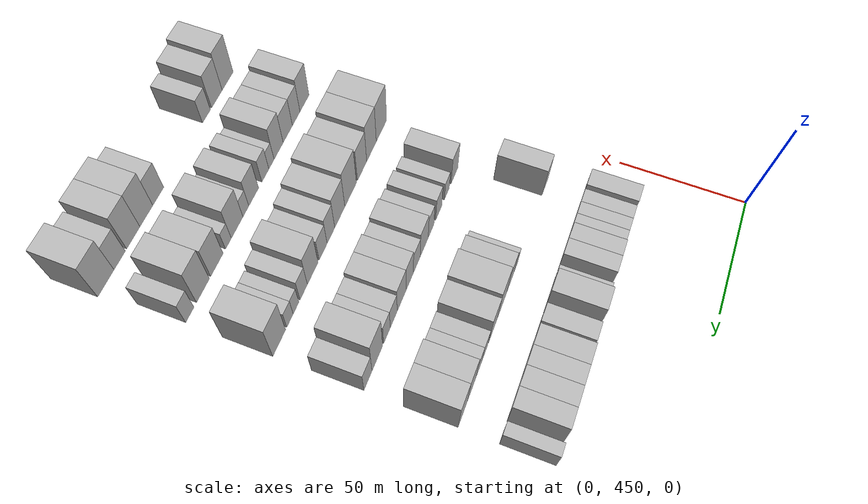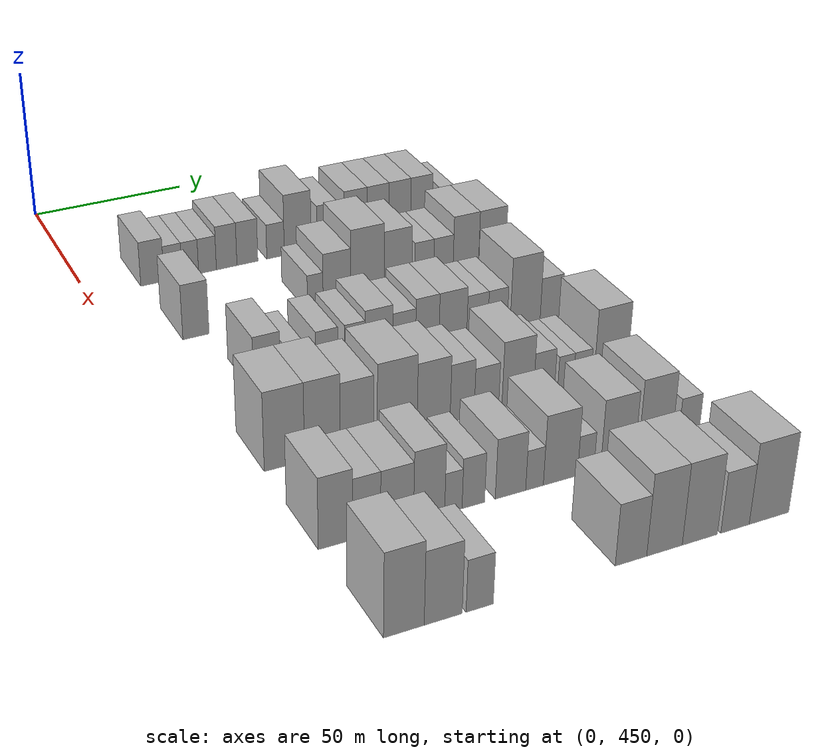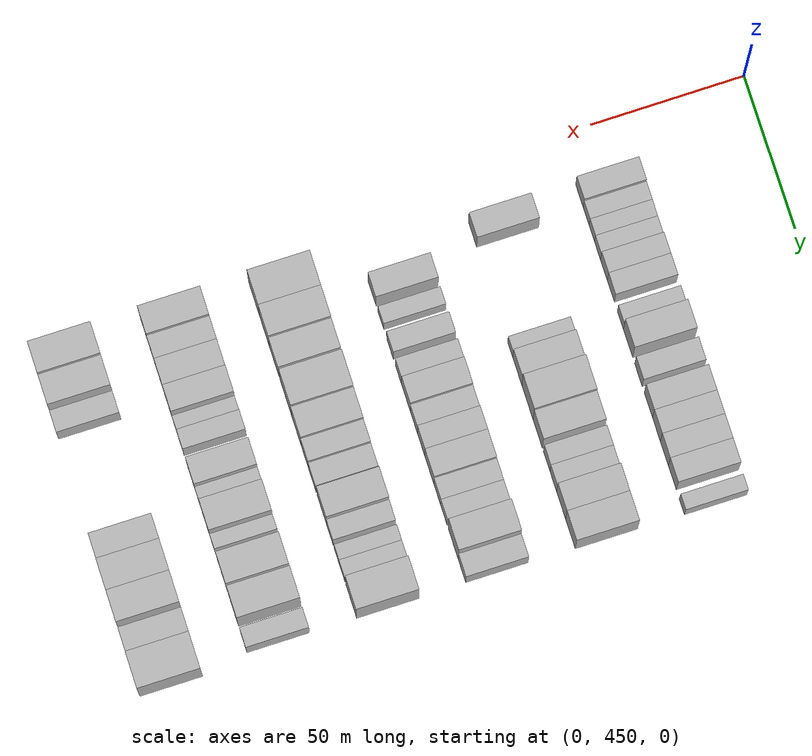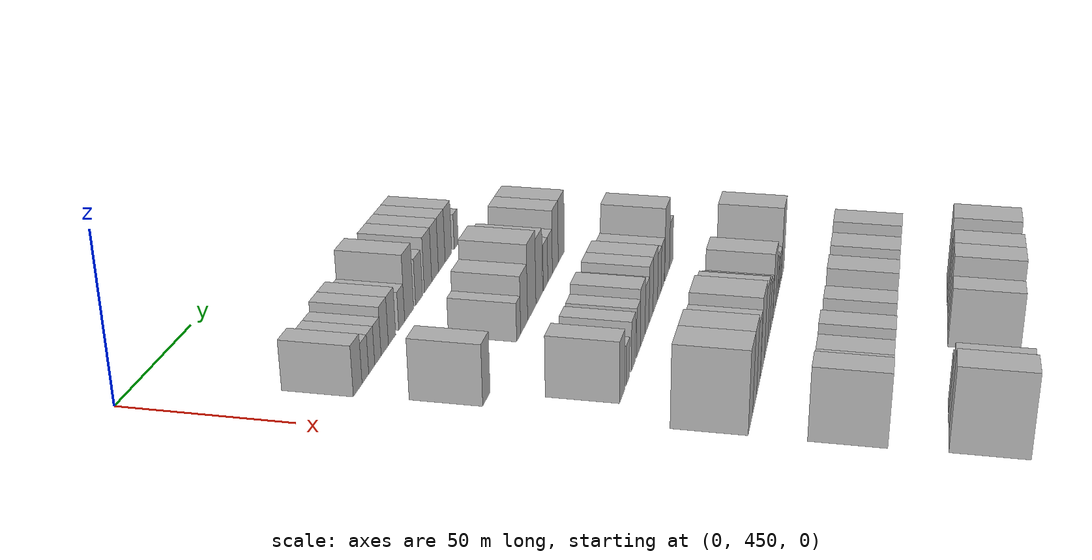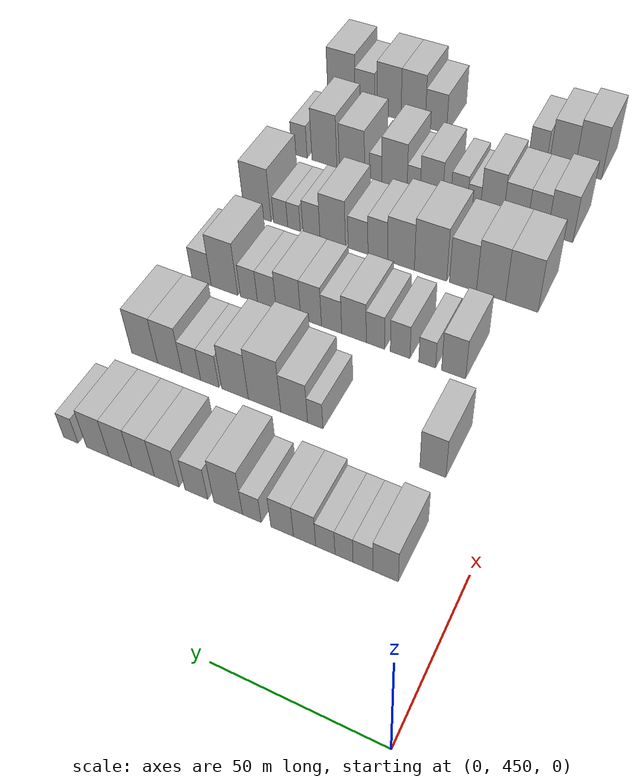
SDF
<sdf version="1.6">
 <world name="default">
  <model name="building_114">
   <static>1</static>
   <pose>50.0000 470.1236 0 0.000000 0.000000 0.000000</pose>
   <link name="link">
    <pose>0 0 7.50 0 0 0</pose>
    <collision name="collision"><geometry><box><size>20.0000 7.4652 15.0000</size></box></geometry></collision>
    <visual name="visual">
     <cast_shadows>0</cast_shadows>
     <geometry><box><size>20.0000 7.4652 15.0000</size></box></geometry>
     <material>
      <script>
       <uri>model://HANNAS_wall/materials/scripts</uri>
       <uri>model://HANNAS_wall/materials/textures</uri>
       <name>vrc/HANNAS_wall</name>
      </script>
     </material>
    </visual>
   </link>
  </model>
  <model name="building_115">
   <static>1</static>
   <pose>50.0000 476.7778 0 0.000000 0.000000 0.000000</pose>
   <link name="link">
    <pose>0 0 6.00 0 0 0</pose>
    <collision name="collision"><geometry><box><size>20.0000 5.8432 12.0000</size></box></geometry></collision>
    <visual name="visual">
     <cast_shadows>0</cast_shadows>
     <geometry><box><size>20.0000 5.8432 12.0000</size></box></geometry>
     <material>
      <script>
       <uri>model://HANNAS_wall/materials/scripts</uri>
       <uri>model://HANNAS_wall/materials/textures</uri>
       <name>vrc/HANNAS_wall</name>
      </script>
     </material>
    </visual>
   </link>
  </model>
  <model name="building_116">
   <static>1</static>
   <pose>50.0000 482.3951 0 0.000000 0.000000 0.000000</pose>
   <link name="link">
    <pose>0 0 6.00 0 0 0</pose>
    <collision name="collision"><geometry><box><size>20.0000 5.3913 12.0000</size></box></geometry></collision>
    <visual name="visual">
     <cast_shadows>0</cast_shadows>
     <geometry><box><size>20.0000 5.3913 12.0000</size></box></geometry>
     <material>
      <script>
       <uri>model://HANNAS_wall/materials/scripts</uri>
       <uri>model://HANNAS_wall/materials/textures</uri>
       <name>vrc/HANNAS_wall</name>
      </script>
     </material>
    </visual>
   </link>
  </model>
  <model name="building_117">
   <static>1</static>
   <pose>50.0000 488.0095 0 0.000000 0.000000 0.000000</pose>
   <link name="link">
    <pose>0 0 6.00 0 0 0</pose>
    <collision name="collision"><geometry><box><size>20.0000 5.8376 12.0000</size></box></geometry></collision>
    <visual name="visual">
     <cast_shadows>0</cast_shadows>
     <geometry><box><size>20.0000 5.8376 12.0000</size></box></geometry>
     <material>
      <script>
       <uri>model://HANNAS_wall/materials/scripts</uri>
       <uri>model://HANNAS_wall/materials/textures</uri>
       <name>vrc/HANNAS_wall</name>
      </script>
     </material>
    </visual>
   </link>
  </model>
  <model name="building_118">
   <static>1</static>
   <pose>50.0000 494.3318 0 0.000000 0.000000 0.000000</pose>
   <link name="link">
    <pose>0 0 7.50 0 0 0</pose>
    <collision name="collision"><geometry><box><size>20.0000 6.8071 15.0000</size></box></geometry></collision>
    <visual name="visual">
     <cast_shadows>0</cast_shadows>
     <geometry><box><size>20.0000 6.8071 15.0000</size></box></geometry>
     <material>
      <script>
       <uri>model://HANNAS_wall/materials/scripts</uri>
       <uri>model://HANNAS_wall/materials/textures</uri>
       <name>vrc/HANNAS_wall</name>
      </script>
     </material>
    </visual>
   </link>
  </model>
  <model name="building_119">
   <static>1</static>
   <pose>50.0000 501.2410 0 0.000000 0.000000 0.000000</pose>
   <link name="link">
    <pose>0 0 7.50 0 0 0</pose>
    <collision name="collision"><geometry><box><size>20.0000 7.0112 15.0000</size></box></geometry></collision>
    <visual name="visual">
     <cast_shadows>0</cast_shadows>
     <geometry><box><size>20.0000 7.0112 15.0000</size></box></geometry>
     <material>
      <script>
       <uri>model://HANNAS_wall/materials/scripts</uri>
       <uri>model://HANNAS_wall/materials/textures</uri>
       <name>vrc/HANNAS_wall</name>
      </script>
     </material>
    </visual>
   </link>
  </model>
  <model name="building_120">
   <static>1</static>
   <pose>50.0000 510.7262 0 0.000000 0.000000 0.000000</pose>
   <link name="link">
    <pose>0 0 6.00 0 0 0</pose>
    <collision name="collision"><geometry><box><size>20.0000 5.9592 12.0000</size></box></geometry></collision>
    <visual name="visual">
     <cast_shadows>0</cast_shadows>
     <geometry><box><size>20.0000 5.9592 12.0000</size></box></geometry>
     <material>
      <script>
       <uri>model://HANNAS_wall/materials/scripts</uri>
       <uri>model://HANNAS_wall/materials/textures</uri>
       <name>vrc/HANNAS_wall</name>
      </script>
     </material>
    </visual>
   </link>
  </model>
  <model name="building_121">
   <static>1</static>
   <pose>50.0000 518.2867 0 0.000000 0.000000 0.000000</pose>
   <link name="link">
    <pose>0 0 10.50 0 0 0</pose>
    <collision name="collision"><geometry><box><size>20.0000 9.1616 21.0000</size></box></geometry></collision>
    <visual name="visual">
     <cast_shadows>0</cast_shadows>
     <geometry><box><size>20.0000 9.1616 21.0000</size></box></geometry>
     <material>
      <script>
       <uri>model://HANNAS_wall/materials/scripts</uri>
       <uri>model://HANNAS_wall/materials/textures</uri>
       <name>vrc/HANNAS_wall</name>
      </script>
     </material>
    </visual>
   </link>
  </model>
  <model name="building_122">
   <static>1</static>
   <pose>50.0000 528.5671 0 0.000000 0.000000 0.000000</pose>
   <link name="link">
    <pose>0 0 7.50 0 0 0</pose>
    <collision name="collision"><geometry><box><size>20.0000 7.3992 15.0000</size></box></geometry></collision>
    <visual name="visual">
     <cast_shadows>0</cast_shadows>
     <geometry><box><size>20.0000 7.3992 15.0000</size></box></geometry>
     <material>
      <script>
       <uri>model://HANNAS_wall/materials/scripts</uri>
       <uri>model://HANNAS_wall/materials/textures</uri>
       <name>vrc/HANNAS_wall</name>
      </script>
     </material>
    </visual>
   </link>
  </model>
  <model name="building_123">
   <static>1</static>
   <pose>50.0000 538.3645 0 0.000000 0.000000 0.000000</pose>
   <link name="link">
    <pose>0 0 9.00 0 0 0</pose>
    <collision name="collision"><geometry><box><size>20.0000 8.1956 18.0000</size></box></geometry></collision>
    <visual name="visual">
     <cast_shadows>0</cast_shadows>
     <geometry><box><size>20.0000 8.1956 18.0000</size></box></geometry>
     <material>
      <script>
       <uri>model://HANNAS_wall/materials/scripts</uri>
       <uri>model://HANNAS_wall/materials/textures</uri>
       <name>vrc/HANNAS_wall</name>
      </script>
     </material>
    </visual>
   </link>
  </model>
  <model name="building_124">
   <static>1</static>
   <pose>50.0000 546.2753 0 0.000000 0.000000 0.000000</pose>
   <link name="link">
    <pose>0 0 9.00 0 0 0</pose>
    <collision name="collision"><geometry><box><size>20.0000 7.6260 18.0000</size></box></geometry></collision>
    <visual name="visual">
     <cast_shadows>0</cast_shadows>
     <geometry><box><size>20.0000 7.6260 18.0000</size></box></geometry>
     <material>
      <script>
       <uri>model://HANNAS_wall/materials/scripts</uri>
       <uri>model://HANNAS_wall/materials/textures</uri>
       <name>vrc/HANNAS_wall</name>
      </script>
     </material>
    </visual>
   </link>
  </model>
  <model name="building_125">
   <static>1</static>
   <pose>50.0000 554.0052 0 0.000000 0.000000 0.000000</pose>
   <link name="link">
    <pose>0 0 9.00 0 0 0</pose>
    <collision name="collision"><geometry><box><size>20.0000 7.8336 18.0000</size></box></geometry></collision>
    <visual name="visual">
     <cast_shadows>0</cast_shadows>
     <geometry><box><size>20.0000 7.8336 18.0000</size></box></geometry>
     <material>
      <script>
       <uri>model://HANNAS_wall/materials/scripts</uri>
       <uri>model://HANNAS_wall/materials/textures</uri>
       <name>vrc/HANNAS_wall</name>
      </script>
     </material>
    </visual>
   </link>
  </model>
  <model name="building_126">
   <static>1</static>
   <pose>50.0000 561.8334 0 0.000000 0.000000 0.000000</pose>
   <link name="link">
    <pose>0 0 9.00 0 0 0</pose>
    <collision name="collision"><geometry><box><size>20.0000 7.8229 18.0000</size></box></geometry></collision>
    <visual name="visual">
     <cast_shadows>0</cast_shadows>
     <geometry><box><size>20.0000 7.8229 18.0000</size></box></geometry>
     <material>
      <script>
       <uri>model://HANNAS_wall/materials/scripts</uri>
       <uri>model://HANNAS_wall/materials/textures</uri>
       <name>vrc/HANNAS_wall</name>
      </script>
     </material>
    </visual>
   </link>
  </model>
  <model name="building_127">
   <static>1</static>
   <pose>50.0000 571.2763 0 0.000000 0.000000 0.000000</pose>
   <link name="link">
    <pose>0 0 6.00 0 0 0</pose>
    <collision name="collision"><geometry><box><size>20.0000 5.0629 12.0000</size></box></geometry></collision>
    <visual name="visual">
     <cast_shadows>0</cast_shadows>
     <geometry><box><size>20.0000 5.0629 12.0000</size></box></geometry>
     <material>
      <script>
       <uri>model://HANNAS_wall/materials/scripts</uri>
       <uri>model://HANNAS_wall/materials/textures</uri>
       <name>vrc/HANNAS_wall</name>
      </script>
     </material>
    </visual>
   </link>
  </model>
  <model name="building_244">
   <static>1</static>
   <pose>85.0000 471.5363 0 0.000000 0.000000 0.000000</pose>
   <link name="link">
    <pose>0 0 9.00 0 0 0</pose>
    <collision name="collision"><geometry><box><size>20.0000 8.0661 18.0000</size></box></geometry></collision>
    <visual name="visual">
     <cast_shadows>0</cast_shadows>
     <geometry><box><size>20.0000 8.0661 18.0000</size></box></geometry>
     <material>
      <script>
       <uri>model://HANNAS_wall/materials/scripts</uri>
       <uri>model://HANNAS_wall/materials/textures</uri>
       <name>vrc/HANNAS_wall</name>
      </script>
     </material>
    </visual>
   </link>
  </model>
  <model name="building_245">
   <static>1</static>
   <pose>85.0000 509.1930 0 0.000000 0.000000 0.000000</pose>
   <link name="link">
    <pose>0 0 6.00 0 0 0</pose>
    <collision name="collision"><geometry><box><size>20.0000 5.0824 12.0000</size></box></geometry></collision>
    <visual name="visual">
     <cast_shadows>0</cast_shadows>
     <geometry><box><size>20.0000 5.0824 12.0000</size></box></geometry>
     <material>
      <script>
       <uri>model://HANNAS_wall/materials/scripts</uri>
       <uri>model://HANNAS_wall/materials/textures</uri>
       <name>vrc/HANNAS_wall</name>
      </script>
     </material>
    </visual>
   </link>
  </model>
  <model name="building_246">
   <static>1</static>
   <pose>85.0000 516.2312 0 0.000000 0.000000 0.000000</pose>
   <link name="link">
    <pose>0 0 9.00 0 0 0</pose>
    <collision name="collision"><geometry><box><size>20.0000 8.9940 18.0000</size></box></geometry></collision>
    <visual name="visual">
     <cast_shadows>0</cast_shadows>
     <geometry><box><size>20.0000 8.9940 18.0000</size></box></geometry>
     <material>
      <script>
       <uri>model://HANNAS_wall/materials/scripts</uri>
       <uri>model://HANNAS_wall/materials/textures</uri>
       <name>vrc/HANNAS_wall</name>
      </script>
     </material>
    </visual>
   </link>
  </model>
  <model name="building_247">
   <static>1</static>
   <pose>85.0000 526.2888 0 0.000000 0.000000 0.000000</pose>
   <link name="link">
    <pose>0 0 12.00 0 0 0</pose>
    <collision name="collision"><geometry><box><size>20.0000 11.1211 24.0000</size></box></geometry></collision>
    <visual name="visual">
     <cast_shadows>0</cast_shadows>
     <geometry><box><size>20.0000 11.1211 24.0000</size></box></geometry>
     <material>
      <script>
       <uri>model://HANNAS_wall/materials/scripts</uri>
       <uri>model://HANNAS_wall/materials/textures</uri>
       <name>vrc/HANNAS_wall</name>
      </script>
     </material>
    </visual>
   </link>
  </model>
  <model name="building_248">
   <static>1</static>
   <pose>85.0000 536.4788 0 0.000000 0.000000 0.000000</pose>
   <link name="link">
    <pose>0 0 10.50 0 0 0</pose>
    <collision name="collision"><geometry><box><size>20.0000 9.2590 21.0000</size></box></geometry></collision>
    <visual name="visual">
     <cast_shadows>0</cast_shadows>
     <geometry><box><size>20.0000 9.2590 21.0000</size></box></geometry>
     <material>
      <script>
       <uri>model://HANNAS_wall/materials/scripts</uri>
       <uri>model://HANNAS_wall/materials/textures</uri>
       <name>vrc/HANNAS_wall</name>
      </script>
     </material>
    </visual>
   </link>
  </model>
  <model name="building_249">
   <static>1</static>
   <pose>85.0000 545.3317 0 0.000000 0.000000 0.000000</pose>
   <link name="link">
    <pose>0 0 7.50 0 0 0</pose>
    <collision name="collision"><geometry><box><size>20.0000 6.4467 15.0000</size></box></geometry></collision>
    <visual name="visual">
     <cast_shadows>0</cast_shadows>
     <geometry><box><size>20.0000 6.4467 15.0000</size></box></geometry>
     <material>
      <script>
       <uri>model://HANNAS_wall/materials/scripts</uri>
       <uri>model://HANNAS_wall/materials/textures</uri>
       <name>vrc/HANNAS_wall</name>
      </script>
     </material>
    </visual>
   </link>
  </model>
  <model name="building_250">
   <static>1</static>
   <pose>85.0000 551.8783 0 0.000000 0.000000 0.000000</pose>
   <link name="link">
    <pose>0 0 7.50 0 0 0</pose>
    <collision name="collision"><geometry><box><size>20.0000 6.6464 15.0000</size></box></geometry></collision>
    <visual name="visual">
     <cast_shadows>0</cast_shadows>
     <geometry><box><size>20.0000 6.6464 15.0000</size></box></geometry>
     <material>
      <script>
       <uri>model://HANNAS_wall/materials/scripts</uri>
       <uri>model://HANNAS_wall/materials/textures</uri>
       <name>vrc/HANNAS_wall</name>
      </script>
     </material>
    </visual>
   </link>
  </model>
  <model name="building_251">
   <static>1</static>
   <pose>85.0000 559.6322 0 0.000000 0.000000 0.000000</pose>
   <link name="link">
    <pose>0 0 10.50 0 0 0</pose>
    <collision name="collision"><geometry><box><size>20.0000 8.8614 21.0000</size></box></geometry></collision>
    <visual name="visual">
     <cast_shadows>0</cast_shadows>
     <geometry><box><size>20.0000 8.8614 21.0000</size></box></geometry>
     <material>
      <script>
       <uri>model://HANNAS_wall/materials/scripts</uri>
       <uri>model://HANNAS_wall/materials/textures</uri>
       <name>vrc/HANNAS_wall</name>
      </script>
     </material>
    </visual>
   </link>
  </model>
  <model name="building_252">
   <static>1</static>
   <pose>85.0000 568.8196 0 0.000000 0.000000 0.000000</pose>
   <link name="link">
    <pose>0 0 10.50 0 0 0</pose>
    <collision name="collision"><geometry><box><size>20.0000 9.5135 21.0000</size></box></geometry></collision>
    <visual name="visual">
     <cast_shadows>0</cast_shadows>
     <geometry><box><size>20.0000 9.5135 21.0000</size></box></geometry>
     <material>
      <script>
       <uri>model://HANNAS_wall/materials/scripts</uri>
       <uri>model://HANNAS_wall/materials/textures</uri>
       <name>vrc/HANNAS_wall</name>
      </script>
     </material>
    </visual>
   </link>
  </model>
  <model name="building_368">
   <static>1</static>
   <pose>120.0000 479.6283 0 0.000000 0.000000 0.000000</pose>
   <link name="link">
    <pose>0 0 9.00 0 0 0</pose>
    <collision name="collision"><geometry><box><size>20.0000 7.9567 18.0000</size></box></geometry></collision>
    <visual name="visual">
     <cast_shadows>0</cast_shadows>
     <geometry><box><size>20.0000 7.9567 18.0000</size></box></geometry>
     <material>
      <script>
       <uri>model://HANNAS_wall/materials/scripts</uri>
       <uri>model://HANNAS_wall/materials/textures</uri>
       <name>vrc/HANNAS_wall</name>
      </script>
     </material>
    </visual>
   </link>
  </model>
  <model name="building_369">
   <static>1</static>
   <pose>120.0000 488.4343 0 0.000000 0.000000 0.000000</pose>
   <link name="link">
    <pose>0 0 6.00 0 0 0</pose>
    <collision name="collision"><geometry><box><size>20.0000 5.6554 12.0000</size></box></geometry></collision>
    <visual name="visual">
     <cast_shadows>0</cast_shadows>
     <geometry><box><size>20.0000 5.6554 12.0000</size></box></geometry>
     <material>
      <script>
       <uri>model://HANNAS_wall/materials/scripts</uri>
       <uri>model://HANNAS_wall/materials/textures</uri>
       <name>vrc/HANNAS_wall</name>
      </script>
     </material>
    </visual>
   </link>
  </model>
  <model name="building_370">
   <static>1</static>
   <pose>120.0000 497.6074 0 0.000000 0.000000 0.000000</pose>
   <link name="link">
    <pose>0 0 7.50 0 0 0</pose>
    <collision name="collision"><geometry><box><size>20.0000 6.6908 15.0000</size></box></geometry></collision>
    <visual name="visual">
     <cast_shadows>0</cast_shadows>
     <geometry><box><size>20.0000 6.6908 15.0000</size></box></geometry>
     <material>
      <script>
       <uri>model://HANNAS_wall/materials/scripts</uri>
       <uri>model://HANNAS_wall/materials/textures</uri>
       <name>vrc/HANNAS_wall</name>
      </script>
     </material>
    </visual>
   </link>
  </model>
  <model name="building_371">
   <static>1</static>
   <pose>120.0000 506.1141 0 0.000000 0.000000 0.000000</pose>
   <link name="link">
    <pose>0 0 7.50 0 0 0</pose>
    <collision name="collision"><geometry><box><size>20.0000 6.3225 15.0000</size></box></geometry></collision>
    <visual name="visual">
     <cast_shadows>0</cast_shadows>
     <geometry><box><size>20.0000 6.3225 15.0000</size></box></geometry>
     <material>
      <script>
       <uri>model://HANNAS_wall/materials/scripts</uri>
       <uri>model://HANNAS_wall/materials/textures</uri>
       <name>vrc/HANNAS_wall</name>
      </script>
     </material>
    </visual>
   </link>
  </model>
  <model name="building_372">
   <static>1</static>
   <pose>120.0000 513.5828 0 0.000000 0.000000 0.000000</pose>
   <link name="link">
    <pose>0 0 9.00 0 0 0</pose>
    <collision name="collision"><geometry><box><size>20.0000 8.6150 18.0000</size></box></geometry></collision>
    <visual name="visual">
     <cast_shadows>0</cast_shadows>
     <geometry><box><size>20.0000 8.6150 18.0000</size></box></geometry>
     <material>
      <script>
       <uri>model://HANNAS_wall/materials/scripts</uri>
       <uri>model://HANNAS_wall/materials/textures</uri>
       <name>vrc/HANNAS_wall</name>
      </script>
     </material>
    </visual>
   </link>
  </model>
  <model name="building_373">
   <static>1</static>
   <pose>120.0000 521.4848 0 0.000000 0.000000 0.000000</pose>
   <link name="link">
    <pose>0 0 7.50 0 0 0</pose>
    <collision name="collision"><geometry><box><size>20.0000 7.1890 15.0000</size></box></geometry></collision>
    <visual name="visual">
     <cast_shadows>0</cast_shadows>
     <geometry><box><size>20.0000 7.1890 15.0000</size></box></geometry>
     <material>
      <script>
       <uri>model://HANNAS_wall/materials/scripts</uri>
       <uri>model://HANNAS_wall/materials/textures</uri>
       <name>vrc/HANNAS_wall</name>
      </script>
     </material>
    </visual>
   </link>
  </model>
  <model name="building_374">
   <static>1</static>
   <pose>120.0000 528.8206 0 0.000000 0.000000 0.000000</pose>
   <link name="link">
    <pose>0 0 9.00 0 0 0</pose>
    <collision name="collision"><geometry><box><size>20.0000 7.4825 18.0000</size></box></geometry></collision>
    <visual name="visual">
     <cast_shadows>0</cast_shadows>
     <geometry><box><size>20.0000 7.4825 18.0000</size></box></geometry>
     <material>
      <script>
       <uri>model://HANNAS_wall/materials/scripts</uri>
       <uri>model://HANNAS_wall/materials/textures</uri>
       <name>vrc/HANNAS_wall</name>
      </script>
     </material>
    </visual>
   </link>
  </model>
  <model name="building_375">
   <static>1</static>
   <pose>120.0000 537.0497 0 0.000000 0.000000 0.000000</pose>
   <link name="link">
    <pose>0 0 9.00 0 0 0</pose>
    <collision name="collision"><geometry><box><size>20.0000 8.9758 18.0000</size></box></geometry></collision>
    <visual name="visual">
     <cast_shadows>0</cast_shadows>
     <geometry><box><size>20.0000 8.9758 18.0000</size></box></geometry>
     <material>
      <script>
       <uri>model://HANNAS_wall/materials/scripts</uri>
       <uri>model://HANNAS_wall/materials/textures</uri>
       <name>vrc/HANNAS_wall</name>
      </script>
     </material>
    </visual>
   </link>
  </model>
  <model name="building_376">
   <static>1</static>
   <pose>120.0000 544.9747 0 0.000000 0.000000 0.000000</pose>
   <link name="link">
    <pose>0 0 7.50 0 0 0</pose>
    <collision name="collision"><geometry><box><size>20.0000 6.8741 15.0000</size></box></geometry></collision>
    <visual name="visual">
     <cast_shadows>0</cast_shadows>
     <geometry><box><size>20.0000 6.8741 15.0000</size></box></geometry>
     <material>
      <script>
       <uri>model://HANNAS_wall/materials/scripts</uri>
       <uri>model://HANNAS_wall/materials/textures</uri>
       <name>vrc/HANNAS_wall</name>
      </script>
     </material>
    </visual>
   </link>
  </model>
  <model name="building_377">
   <static>1</static>
   <pose>120.0000 551.5990 0 0.000000 0.000000 0.000000</pose>
   <link name="link">
    <pose>0 0 7.50 0 0 0</pose>
    <collision name="collision"><geometry><box><size>20.0000 6.3744 15.0000</size></box></geometry></collision>
    <visual name="visual">
     <cast_shadows>0</cast_shadows>
     <geometry><box><size>20.0000 6.3744 15.0000</size></box></geometry>
     <material>
      <script>
       <uri>model://HANNAS_wall/materials/scripts</uri>
       <uri>model://HANNAS_wall/materials/textures</uri>
       <name>vrc/HANNAS_wall</name>
      </script>
     </material>
    </visual>
   </link>
  </model>
  <model name="building_378">
   <static>1</static>
   <pose>120.0000 560.8158 0 0.000000 0.000000 0.000000</pose>
   <link name="link">
    <pose>0 0 12.00 0 0 0</pose>
    <collision name="collision"><geometry><box><size>20.0000 10.0592 24.0000</size></box></geometry></collision>
    <visual name="visual">
     <cast_shadows>0</cast_shadows>
     <geometry><box><size>20.0000 10.0592 24.0000</size></box></geometry>
     <material>
      <script>
       <uri>model://HANNAS_wall/materials/scripts</uri>
       <uri>model://HANNAS_wall/materials/textures</uri>
       <name>vrc/HANNAS_wall</name>
      </script>
     </material>
    </visual>
   </link>
  </model>
  <model name="building_379">
   <static>1</static>
   <pose>120.0000 569.5398 0 0.000000 0.000000 0.000000</pose>
   <link name="link">
    <pose>0 0 7.50 0 0 0</pose>
    <collision name="collision"><geometry><box><size>20.0000 7.3888 15.0000</size></box></geometry></collision>
    <visual name="visual">
     <cast_shadows>0</cast_shadows>
     <geometry><box><size>20.0000 7.3888 15.0000</size></box></geometry>
     <material>
      <script>
       <uri>model://HANNAS_wall/materials/scripts</uri>
       <uri>model://HANNAS_wall/materials/textures</uri>
       <name>vrc/HANNAS_wall</name>
      </script>
     </material>
    </visual>
   </link>
  </model>
  <model name="building_495">
   <static>1</static>
   <pose>155.0000 470.2665 0 0.000000 0.000000 0.000000</pose>
   <link name="link">
    <pose>0 0 12.00 0 0 0</pose>
    <collision name="collision"><geometry><box><size>20.0000 11.2035 24.0000</size></box></geometry></collision>
    <visual name="visual">
     <cast_shadows>0</cast_shadows>
     <geometry><box><size>20.0000 11.2035 24.0000</size></box></geometry>
     <material>
      <script>
       <uri>model://HANNAS_wall/materials/scripts</uri>
       <uri>model://HANNAS_wall/materials/textures</uri>
       <name>vrc/HANNAS_wall</name>
      </script>
     </material>
    </visual>
   </link>
  </model>
  <model name="building_496">
   <static>1</static>
   <pose>155.0000 480.9307 0 0.000000 0.000000 0.000000</pose>
   <link name="link">
    <pose>0 0 12.00 0 0 0</pose>
    <collision name="collision"><geometry><box><size>20.0000 10.1250 24.0000</size></box></geometry></collision>
    <visual name="visual">
     <cast_shadows>0</cast_shadows>
     <geometry><box><size>20.0000 10.1250 24.0000</size></box></geometry>
     <material>
      <script>
       <uri>model://HANNAS_wall/materials/scripts</uri>
       <uri>model://HANNAS_wall/materials/textures</uri>
       <name>vrc/HANNAS_wall</name>
      </script>
     </material>
    </visual>
   </link>
  </model>
  <model name="building_497">
   <static>1</static>
   <pose>155.0000 490.7815 0 0.000000 0.000000 0.000000</pose>
   <link name="link">
    <pose>0 0 10.50 0 0 0</pose>
    <collision name="collision"><geometry><box><size>20.0000 9.5767 21.0000</size></box></geometry></collision>
    <visual name="visual">
     <cast_shadows>0</cast_shadows>
     <geometry><box><size>20.0000 9.5767 21.0000</size></box></geometry>
     <material>
      <script>
       <uri>model://HANNAS_wall/materials/scripts</uri>
       <uri>model://HANNAS_wall/materials/textures</uri>
       <name>vrc/HANNAS_wall</name>
      </script>
     </material>
    </visual>
   </link>
  </model>
  <model name="building_498">
   <static>1</static>
   <pose>155.0000 502.4051 0 0.000000 0.000000 0.000000</pose>
   <link name="link">
    <pose>0 0 12.00 0 0 0</pose>
    <collision name="collision"><geometry><box><size>20.0000 11.6706 24.0000</size></box></geometry></collision>
    <visual name="visual">
     <cast_shadows>0</cast_shadows>
     <geometry><box><size>20.0000 11.6706 24.0000</size></box></geometry>
     <material>
      <script>
       <uri>model://HANNAS_wall/materials/scripts</uri>
       <uri>model://HANNAS_wall/materials/textures</uri>
       <name>vrc/HANNAS_wall</name>
      </script>
     </material>
    </visual>
   </link>
  </model>
  <model name="building_499">
   <static>1</static>
   <pose>155.0000 513.1754 0 0.000000 0.000000 0.000000</pose>
   <link name="link">
    <pose>0 0 10.50 0 0 0</pose>
    <collision name="collision"><geometry><box><size>20.0000 9.8700 21.0000</size></box></geometry></collision>
    <visual name="visual">
     <cast_shadows>0</cast_shadows>
     <geometry><box><size>20.0000 9.8700 21.0000</size></box></geometry>
     <material>
      <script>
       <uri>model://HANNAS_wall/materials/scripts</uri>
       <uri>model://HANNAS_wall/materials/textures</uri>
       <name>vrc/HANNAS_wall</name>
      </script>
     </material>
    </visual>
   </link>
  </model>
  <model name="building_500">
   <static>1</static>
   <pose>155.0000 521.7497 0 0.000000 0.000000 0.000000</pose>
   <link name="link">
    <pose>0 0 9.00 0 0 0</pose>
    <collision name="collision"><geometry><box><size>20.0000 7.2785 18.0000</size></box></geometry></collision>
    <visual name="visual">
     <cast_shadows>0</cast_shadows>
     <geometry><box><size>20.0000 7.2785 18.0000</size></box></geometry>
     <material>
      <script>
       <uri>model://HANNAS_wall/materials/scripts</uri>
       <uri>model://HANNAS_wall/materials/textures</uri>
       <name>vrc/HANNAS_wall</name>
      </script>
     </material>
    </visual>
   </link>
  </model>
  <model name="building_501">
   <static>1</static>
   <pose>155.0000 529.1202 0 0.000000 0.000000 0.000000</pose>
   <link name="link">
    <pose>0 0 7.50 0 0 0</pose>
    <collision name="collision"><geometry><box><size>20.0000 7.4625 15.0000</size></box></geometry></collision>
    <visual name="visual">
     <cast_shadows>0</cast_shadows>
     <geometry><box><size>20.0000 7.4625 15.0000</size></box></geometry>
     <material>
      <script>
       <uri>model://HANNAS_wall/materials/scripts</uri>
       <uri>model://HANNAS_wall/materials/textures</uri>
       <name>vrc/HANNAS_wall</name>
      </script>
     </material>
    </visual>
   </link>
  </model>
  <model name="building_502">
   <static>1</static>
   <pose>155.0000 538.7309 0 0.000000 0.000000 0.000000</pose>
   <link name="link">
    <pose>0 0 10.50 0 0 0</pose>
    <collision name="collision"><geometry><box><size>20.0000 9.7589 21.0000</size></box></geometry></collision>
    <visual name="visual">
     <cast_shadows>0</cast_shadows>
     <geometry><box><size>20.0000 9.7589 21.0000</size></box></geometry>
     <material>
      <script>
       <uri>model://HANNAS_wall/materials/scripts</uri>
       <uri>model://HANNAS_wall/materials/textures</uri>
       <name>vrc/HANNAS_wall</name>
      </script>
     </material>
    </visual>
   </link>
  </model>
  <model name="building_503">
   <static>1</static>
   <pose>155.0000 546.9127 0 0.000000 0.000000 0.000000</pose>
   <link name="link">
    <pose>0 0 7.50 0 0 0</pose>
    <collision name="collision"><geometry><box><size>20.0000 6.6048 15.0000</size></box></geometry></collision>
    <visual name="visual">
     <cast_shadows>0</cast_shadows>
     <geometry><box><size>20.0000 6.6048 15.0000</size></box></geometry>
     <material>
      <script>
       <uri>model://HANNAS_wall/materials/scripts</uri>
       <uri>model://HANNAS_wall/materials/textures</uri>
       <name>vrc/HANNAS_wall</name>
      </script>
     </material>
    </visual>
   </link>
  </model>
  <model name="building_504">
   <static>1</static>
   <pose>155.0000 553.6991 0 0.000000 0.000000 0.000000</pose>
   <link name="link">
    <pose>0 0 6.00 0 0 0</pose>
    <collision name="collision"><geometry><box><size>20.0000 4.9680 12.0000</size></box></geometry></collision>
    <visual name="visual">
     <cast_shadows>0</cast_shadows>
     <geometry><box><size>20.0000 4.9680 12.0000</size></box></geometry>
     <material>
      <script>
       <uri>model://HANNAS_wall/materials/scripts</uri>
       <uri>model://HANNAS_wall/materials/textures</uri>
       <name>vrc/HANNAS_wall</name>
      </script>
     </material>
    </visual>
   </link>
  </model>
  <model name="building_505">
   <static>1</static>
   <pose>155.0000 558.9519 0 0.000000 0.000000 0.000000</pose>
   <link name="link">
    <pose>0 0 6.00 0 0 0</pose>
    <collision name="collision"><geometry><box><size>20.0000 5.5376 12.0000</size></box></geometry></collision>
    <visual name="visual">
     <cast_shadows>0</cast_shadows>
     <geometry><box><size>20.0000 5.5376 12.0000</size></box></geometry>
     <material>
      <script>
       <uri>model://HANNAS_wall/materials/scripts</uri>
       <uri>model://HANNAS_wall/materials/textures</uri>
       <name>vrc/HANNAS_wall</name>
      </script>
     </material>
    </visual>
   </link>
  </model>
  <model name="building_506">
   <static>1</static>
   <pose>155.0000 568.1164 0 0.000000 0.000000 0.000000</pose>
   <link name="link">
    <pose>0 0 12.00 0 0 0</pose>
    <collision name="collision"><geometry><box><size>20.0000 10.7915 24.0000</size></box></geometry></collision>
    <visual name="visual">
     <cast_shadows>0</cast_shadows>
     <geometry><box><size>20.0000 10.7915 24.0000</size></box></geometry>
     <material>
      <script>
       <uri>model://HANNAS_wall/materials/scripts</uri>
       <uri>model://HANNAS_wall/materials/textures</uri>
       <name>vrc/HANNAS_wall</name>
      </script>
     </material>
    </visual>
   </link>
  </model>
  <model name="building_616">
   <static>1</static>
   <pose>190.0000 469.0601 0 0.000000 0.000000 0.000000</pose>
   <link name="link">
    <pose>0 0 10.50 0 0 0</pose>
    <collision name="collision"><geometry><box><size>20.0000 9.0839 21.0000</size></box></geometry></collision>
    <visual name="visual">
     <cast_shadows>0</cast_shadows>
     <geometry><box><size>20.0000 9.0839 21.0000</size></box></geometry>
     <material>
      <script>
       <uri>model://HANNAS_wall/materials/scripts</uri>
       <uri>model://HANNAS_wall/materials/textures</uri>
       <name>vrc/HANNAS_wall</name>
      </script>
     </material>
    </visual>
   </link>
  </model>
  <model name="building_617">
   <static>1</static>
   <pose>190.0000 477.3041 0 0.000000 0.000000 0.000000</pose>
   <link name="link">
    <pose>0 0 9.00 0 0 0</pose>
    <collision name="collision"><geometry><box><size>20.0000 7.4041 18.0000</size></box></geometry></collision>
    <visual name="visual">
     <cast_shadows>0</cast_shadows>
     <geometry><box><size>20.0000 7.4041 18.0000</size></box></geometry>
     <material>
      <script>
       <uri>model://HANNAS_wall/materials/scripts</uri>
       <uri>model://HANNAS_wall/materials/textures</uri>
       <name>vrc/HANNAS_wall</name>
      </script>
     </material>
    </visual>
   </link>
  </model>
  <model name="building_618">
   <static>1</static>
   <pose>190.0000 485.4784 0 0.000000 0.000000 0.000000</pose>
   <link name="link">
    <pose>0 0 9.00 0 0 0</pose>
    <collision name="collision"><geometry><box><size>20.0000 8.9445 18.0000</size></box></geometry></collision>
    <visual name="visual">
     <cast_shadows>0</cast_shadows>
     <geometry><box><size>20.0000 8.9445 18.0000</size></box></geometry>
     <material>
      <script>
       <uri>model://HANNAS_wall/materials/scripts</uri>
       <uri>model://HANNAS_wall/materials/textures</uri>
       <name>vrc/HANNAS_wall</name>
      </script>
     </material>
    </visual>
   </link>
  </model>
  <model name="building_619">
   <static>1</static>
   <pose>190.0000 494.2417 0 0.000000 0.000000 0.000000</pose>
   <link name="link">
    <pose>0 0 10.50 0 0 0</pose>
    <collision name="collision"><geometry><box><size>20.0000 8.5820 21.0000</size></box></geometry></collision>
    <visual name="visual">
     <cast_shadows>0</cast_shadows>
     <geometry><box><size>20.0000 8.5820 21.0000</size></box></geometry>
     <material>
      <script>
       <uri>model://HANNAS_wall/materials/scripts</uri>
       <uri>model://HANNAS_wall/materials/textures</uri>
       <name>vrc/HANNAS_wall</name>
      </script>
     </material>
    </visual>
   </link>
  </model>
  <model name="building_620">
   <static>1</static>
   <pose>190.0000 500.9619 0 0.000000 0.000000 0.000000</pose>
   <link name="link">
    <pose>0 0 6.00 0 0 0</pose>
    <collision name="collision"><geometry><box><size>20.0000 4.8583 12.0000</size></box></geometry></collision>
    <visual name="visual">
     <cast_shadows>0</cast_shadows>
     <geometry><box><size>20.0000 4.8583 12.0000</size></box></geometry>
     <material>
      <script>
       <uri>model://HANNAS_wall/materials/scripts</uri>
       <uri>model://HANNAS_wall/materials/textures</uri>
       <name>vrc/HANNAS_wall</name>
      </script>
     </material>
    </visual>
   </link>
  </model>
  <model name="building_621">
   <static>1</static>
   <pose>190.0000 506.5706 0 0.000000 0.000000 0.000000</pose>
   <link name="link">
    <pose>0 0 7.50 0 0 0</pose>
    <collision name="collision"><geometry><box><size>20.0000 6.3590 15.0000</size></box></geometry></collision>
    <visual name="visual">
     <cast_shadows>0</cast_shadows>
     <geometry><box><size>20.0000 6.3590 15.0000</size></box></geometry>
     <material>
      <script>
       <uri>model://HANNAS_wall/materials/scripts</uri>
       <uri>model://HANNAS_wall/materials/textures</uri>
       <name>vrc/HANNAS_wall</name>
      </script>
     </material>
    </visual>
   </link>
  </model>
  <model name="building_622">
   <static>1</static>
   <pose>190.0000 517.1018 0 0.000000 0.000000 0.000000</pose>
   <link name="link">
    <pose>0 0 9.00 0 0 0</pose>
    <collision name="collision"><geometry><box><size>20.0000 8.7035 18.0000</size></box></geometry></collision>
    <visual name="visual">
     <cast_shadows>0</cast_shadows>
     <geometry><box><size>20.0000 8.7035 18.0000</size></box></geometry>
     <material>
      <script>
       <uri>model://HANNAS_wall/materials/scripts</uri>
       <uri>model://HANNAS_wall/materials/textures</uri>
       <name>vrc/HANNAS_wall</name>
      </script>
     </material>
    </visual>
   </link>
  </model>
  <model name="building_623">
   <static>1</static>
   <pose>190.0000 524.0142 0 0.000000 0.000000 0.000000</pose>
   <link name="link">
    <pose>0 0 6.00 0 0 0</pose>
    <collision name="collision"><geometry><box><size>20.0000 5.1214 12.0000</size></box></geometry></collision>
    <visual name="visual">
     <cast_shadows>0</cast_shadows>
     <geometry><box><size>20.0000 5.1214 12.0000</size></box></geometry>
     <material>
      <script>
       <uri>model://HANNAS_wall/materials/scripts</uri>
       <uri>model://HANNAS_wall/materials/textures</uri>
       <name>vrc/HANNAS_wall</name>
      </script>
     </material>
    </visual>
   </link>
  </model>
  <model name="building_624">
   <static>1</static>
   <pose>190.0000 531.5812 0 0.000000 0.000000 0.000000</pose>
   <link name="link">
    <pose>0 0 10.50 0 0 0</pose>
    <collision name="collision"><geometry><box><size>20.0000 10.0125 21.0000</size></box></geometry></collision>
    <visual name="visual">
     <cast_shadows>0</cast_shadows>
     <geometry><box><size>20.0000 10.0125 21.0000</size></box></geometry>
     <material>
      <script>
       <uri>model://HANNAS_wall/materials/scripts</uri>
       <uri>model://HANNAS_wall/materials/textures</uri>
       <name>vrc/HANNAS_wall</name>
      </script>
     </material>
    </visual>
   </link>
  </model>
  <model name="building_625">
   <static>1</static>
   <pose>190.0000 539.0128 0 0.000000 0.000000 0.000000</pose>
   <link name="link">
    <pose>0 0 6.00 0 0 0</pose>
    <collision name="collision"><geometry><box><size>20.0000 4.8508 12.0000</size></box></geometry></collision>
    <visual name="visual">
     <cast_shadows>0</cast_shadows>
     <geometry><box><size>20.0000 4.8508 12.0000</size></box></geometry>
     <material>
      <script>
       <uri>model://HANNAS_wall/materials/scripts</uri>
       <uri>model://HANNAS_wall/materials/textures</uri>
       <name>vrc/HANNAS_wall</name>
      </script>
     </material>
    </visual>
   </link>
  </model>
  <model name="building_626">
   <static>1</static>
   <pose>190.0000 548.5527 0 0.000000 0.000000 0.000000</pose>
   <link name="link">
    <pose>0 0 10.50 0 0 0</pose>
    <collision name="collision"><geometry><box><size>20.0000 10.2292 21.0000</size></box></geometry></collision>
    <visual name="visual">
     <cast_shadows>0</cast_shadows>
     <geometry><box><size>20.0000 10.2292 21.0000</size></box></geometry>
     <material>
      <script>
       <uri>model://HANNAS_wall/materials/scripts</uri>
       <uri>model://HANNAS_wall/materials/textures</uri>
       <name>vrc/HANNAS_wall</name>
      </script>
     </material>
    </visual>
   </link>
  </model>
  <model name="building_627">
   <static>1</static>
   <pose>190.0000 559.7898 0 0.000000 0.000000 0.000000</pose>
   <link name="link">
    <pose>0 0 12.00 0 0 0</pose>
    <collision name="collision"><geometry><box><size>20.0000 10.2451 24.0000</size></box></geometry></collision>
    <visual name="visual">
     <cast_shadows>0</cast_shadows>
     <geometry><box><size>20.0000 10.2451 24.0000</size></box></geometry>
     <material>
      <script>
       <uri>model://HANNAS_wall/materials/scripts</uri>
       <uri>model://HANNAS_wall/materials/textures</uri>
       <name>vrc/HANNAS_wall</name>
      </script>
     </material>
    </visual>
   </link>
  </model>
  <model name="building_628">
   <static>1</static>
   <pose>190.0000 570.1152 0 0.000000 0.000000 0.000000</pose>
   <link name="link">
    <pose>0 0 7.50 0 0 0</pose>
    <collision name="collision"><geometry><box><size>20.0000 6.4057 15.0000</size></box></geometry></collision>
    <visual name="visual">
     <cast_shadows>0</cast_shadows>
     <geometry><box><size>20.0000 6.4057 15.0000</size></box></geometry>
     <material>
      <script>
       <uri>model://HANNAS_wall/materials/scripts</uri>
       <uri>model://HANNAS_wall/materials/textures</uri>
       <name>vrc/HANNAS_wall</name>
      </script>
     </material>
    </visual>
   </link>
  </model>
  <model name="building_740">
   <static>1</static>
   <pose>225.0000 470.3078 0 0.000000 0.000000 0.000000</pose>
   <link name="link">
    <pose>0 0 12.00 0 0 0</pose>
    <collision name="collision"><geometry><box><size>20.0000 10.1983 24.0000</size></box></geometry></collision>
    <visual name="visual">
     <cast_shadows>0</cast_shadows>
     <geometry><box><size>20.0000 10.1983 24.0000</size></box></geometry>
     <material>
      <script>
       <uri>model://HANNAS_wall/materials/scripts</uri>
       <uri>model://HANNAS_wall/materials/textures</uri>
       <name>vrc/HANNAS_wall</name>
      </script>
     </material>
    </visual>
   </link>
  </model>
  <model name="building_741">
   <static>1</static>
   <pose>225.0000 480.2449 0 0.000000 0.000000 0.000000</pose>
   <link name="link">
    <pose>0 0 10.50 0 0 0</pose>
    <collision name="collision"><geometry><box><size>20.0000 9.6760 21.0000</size></box></geometry></collision>
    <visual name="visual">
     <cast_shadows>0</cast_shadows>
     <geometry><box><size>20.0000 9.6760 21.0000</size></box></geometry>
     <material>
      <script>
       <uri>model://HANNAS_wall/materials/scripts</uri>
       <uri>model://HANNAS_wall/materials/textures</uri>
       <name>vrc/HANNAS_wall</name>
      </script>
     </material>
    </visual>
   </link>
  </model>
  <model name="building_742">
   <static>1</static>
   <pose>225.0000 489.6066 0 0.000000 0.000000 0.000000</pose>
   <link name="link">
    <pose>0 0 7.50 0 0 0</pose>
    <collision name="collision"><geometry><box><size>20.0000 7.0475 15.0000</size></box></geometry></collision>
    <visual name="visual">
     <cast_shadows>0</cast_shadows>
     <geometry><box><size>20.0000 7.0475 15.0000</size></box></geometry>
     <material>
      <script>
       <uri>model://HANNAS_wall/materials/scripts</uri>
       <uri>model://HANNAS_wall/materials/textures</uri>
       <name>vrc/HANNAS_wall</name>
      </script>
     </material>
    </visual>
   </link>
  </model>
  <model name="building_743">
   <static>1</static>
   <pose>225.0000 530.3100 0 0.000000 0.000000 0.000000</pose>
   <link name="link">
    <pose>0 0 9.00 0 0 0</pose>
    <collision name="collision"><geometry><box><size>20.0000 8.7864 18.0000</size></box></geometry></collision>
    <visual name="visual">
     <cast_shadows>0</cast_shadows>
     <geometry><box><size>20.0000 8.7864 18.0000</size></box></geometry>
     <material>
      <script>
       <uri>model://HANNAS_wall/materials/scripts</uri>
       <uri>model://HANNAS_wall/materials/textures</uri>
       <name>vrc/HANNAS_wall</name>
      </script>
     </material>
    </visual>
   </link>
  </model>
  <model name="building_744">
   <static>1</static>
   <pose>225.0000 539.7505 0 0.000000 0.000000 0.000000</pose>
   <link name="link">
    <pose>0 0 12.00 0 0 0</pose>
    <collision name="collision"><geometry><box><size>20.0000 10.0946 24.0000</size></box></geometry></collision>
    <visual name="visual">
     <cast_shadows>0</cast_shadows>
     <geometry><box><size>20.0000 10.0946 24.0000</size></box></geometry>
     <material>
      <script>
       <uri>model://HANNAS_wall/materials/scripts</uri>
       <uri>model://HANNAS_wall/materials/textures</uri>
       <name>vrc/HANNAS_wall</name>
      </script>
     </material>
    </visual>
   </link>
  </model>
  <model name="building_745">
   <static>1</static>
   <pose>225.0000 549.8717 0 0.000000 0.000000 0.000000</pose>
   <link name="link">
    <pose>0 0 12.00 0 0 0</pose>
    <collision name="collision"><geometry><box><size>20.0000 10.1477 24.0000</size></box></geometry></collision>
    <visual name="visual">
     <cast_shadows>0</cast_shadows>
     <geometry><box><size>20.0000 10.1477 24.0000</size></box></geometry>
     <material>
      <script>
       <uri>model://HANNAS_wall/materials/scripts</uri>
       <uri>model://HANNAS_wall/materials/textures</uri>
       <name>vrc/HANNAS_wall</name>
      </script>
     </material>
    </visual>
   </link>
  </model>
  <model name="building_746">
   <static>1</static>
   <pose>225.0000 560.1217 0 0.000000 0.000000 0.000000</pose>
   <link name="link">
    <pose>0 0 9.00 0 0 0</pose>
    <collision name="collision"><geometry><box><size>20.0000 8.3523 18.0000</size></box></geometry></collision>
    <visual name="visual">
     <cast_shadows>0</cast_shadows>
     <geometry><box><size>20.0000 8.3523 18.0000</size></box></geometry>
     <material>
      <script>
       <uri>model://HANNAS_wall/materials/scripts</uri>
       <uri>model://HANNAS_wall/materials/textures</uri>
       <name>vrc/HANNAS_wall</name>
      </script>
     </material>
    </visual>
   </link>
  </model>
  <model name="building_747">
   <static>1</static>
   <pose>225.0000 570.1996 0 0.000000 0.000000 0.000000</pose>
   <link name="link">
    <pose>0 0 12.00 0 0 0</pose>
    <collision name="collision"><geometry><box><size>20.0000 11.8035 24.0000</size></box></geometry></collision>
    <visual name="visual">
     <cast_shadows>0</cast_shadows>
     <geometry><box><size>20.0000 11.8035 24.0000</size></box></geometry>
     <material>
      <script>
       <uri>model://HANNAS_wall/materials/scripts</uri>
       <uri>model://HANNAS_wall/materials/textures</uri>
       <name>vrc/HANNAS_wall</name>
      </script>
     </material>
    </visual>
   </link>
  </model>
 </world>
</sdf>
